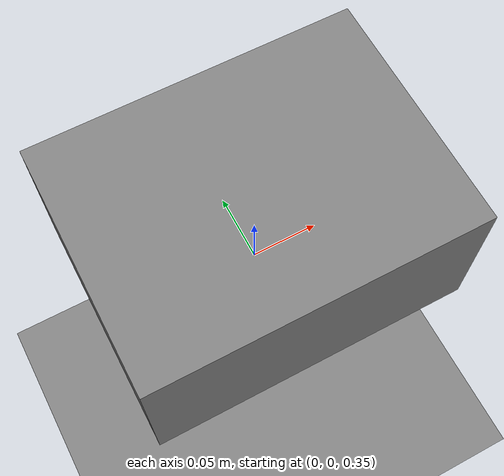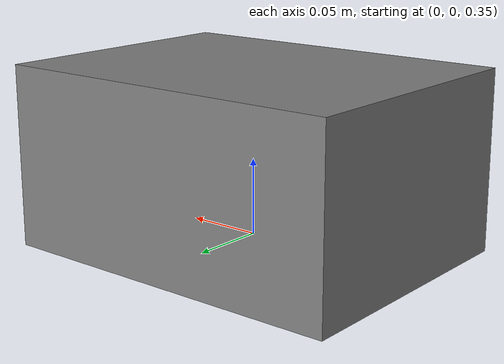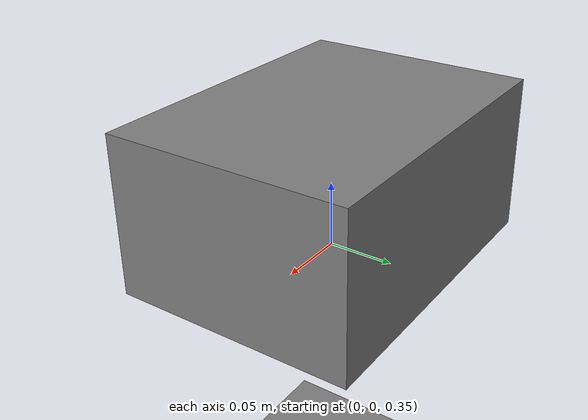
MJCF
<mujoco model="contact wrench">
  <option timestep="0.001" solver="Newton" cone="elliptic"/>
  <worldbody>
    <geom name="floor" type="plane" size="2 2 .1" friction="0.8 0.01 0.001"/>
    <body name="box" pos="0 0 .4">
      <freejoint/>
      <geom name="box_geom" type="box" size=".12 .09 .06"
            mass="2" friction="0.8 0.01 0.001" condim="3"/>
    </body>
  </worldbody>
</mujoco>
